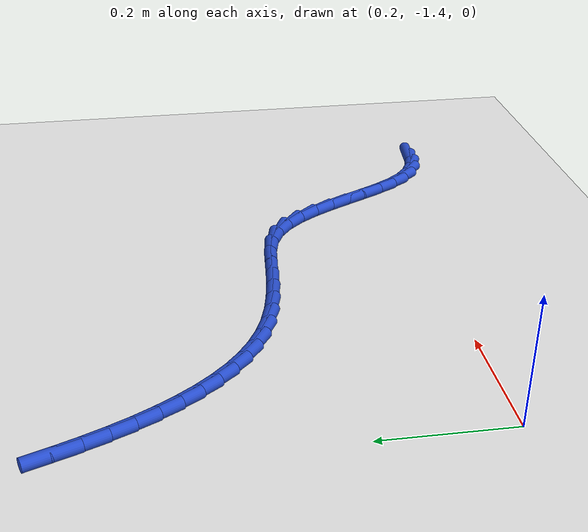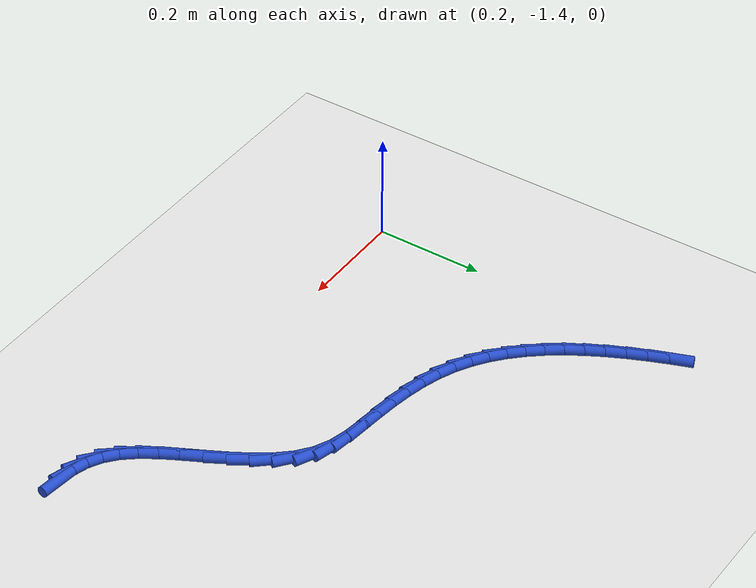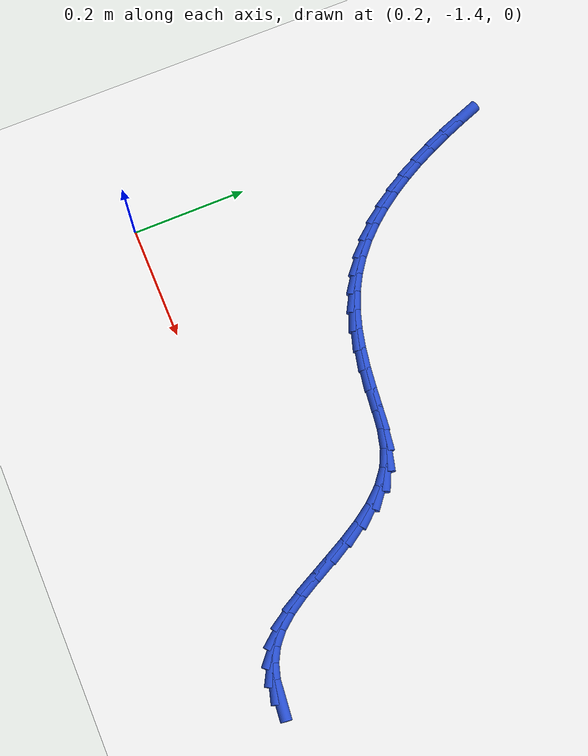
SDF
<sdf version="1.6">
 <world name="default">
  <model name="ground_plane">
   <static>1</static>
   <link name="link">
    <collision name="collision">
     <geometry><plane><normal>0 0 1</normal><size>100 100</size></plane></geometry>
     <surface><friction><ode><mu>100</mu><mu2>50</mu2></ode></friction></surface>
    </collision>
    <visual name="visual">
     <cast_shadows>0</cast_shadows>
     <geometry><plane><normal>0 0 1</normal><size>100 100</size></plane></geometry>
     <material>
      <script><uri>file://media/materials/scripts/gazebo.material</uri><name>Gazebo/WhiteGlow</name></script>
     </material>
    </visual>
   </link>
  </model>
  <model name="line">
   <link name="link_214">
    <pose>1.0305554551037177 -1.4662741876040202 0.01 0 1.57 -0.1008038331178782</pose>
    <collision name="collision">
     <geometry><cylinder><radius>0.01</radius><length>0.08</length></cylinder></geometry>
    </collision>
    <visual name="visual">
     <material>
      <script><name>Gazebo/Blue</name><uri>file://media/materials/scripts/gazebo.material</uri></script>
     </material>
     <geometry><cylinder><radius>0.01</radius><length>0.08</length></cylinder></geometry>
    </visual>
   </link>
   <link name="link_215">
    <pose>1.002368508998246 -1.4634231720626836 0.01 0 1.57 -0.2843484941278745</pose>
    <collision name="collision">
     <geometry><cylinder><radius>0.01</radius><length>0.08</length></cylinder></geometry>
    </collision>
    <visual name="visual">
     <material>
      <script><name>Gazebo/Blue</name><uri>file://media/materials/scripts/gazebo.material</uri></script>
     </material>
     <geometry><cylinder><radius>0.01</radius><length>0.08</length></cylinder></geometry>
    </visual>
   </link>
   <link name="link_216">
    <pose>0.9760531002797908 -1.455732012025685 0.01 0 1.57 -0.49069960765369314</pose>
    <collision name="collision">
     <geometry><cylinder><radius>0.01</radius><length>0.08</length></cylinder></geometry>
    </collision>
    <visual name="visual">
     <material>
      <script><name>Gazebo/Blue</name><uri>file://media/materials/scripts/gazebo.material</uri></script>
     </material>
     <geometry><cylinder><radius>0.01</radius><length>0.08</length></cylinder></geometry>
    </visual>
   </link>
   <link name="link_217">
    <pose>0.9517767680703308 -1.4427614801547657 0.01 0 1.57 -0.702575134789616</pose>
    <collision name="collision">
     <geometry><cylinder><radius>0.01</radius><length>0.08</length></cylinder></geometry>
    </collision>
    <visual name="visual">
     <material>
      <script><name>Gazebo/Blue</name><uri>file://media/materials/scripts/gazebo.material</uri></script>
     </material>
     <geometry><cylinder><radius>0.01</radius><length>0.08</length></cylinder></geometry>
    </visual>
   </link>
   <link name="link_218">
    <pose>0.9297061609691024 -1.424074296624954 0.01 0 1.57 -0.8847422332577769</pose>
    <collision name="collision">
     <geometry><cylinder><radius>0.01</radius><length>0.08</length></cylinder></geometry>
    </collision>
    <visual name="visual">
     <material>
      <script><name>Gazebo/Blue</name><uri>file://media/materials/scripts/gazebo.material</uri></script>
     </material>
     <geometry><cylinder><radius>0.01</radius><length>0.08</length></cylinder></geometry>
    </visual>
   </link>
   <link name="link_219">
    <pose>0.9097786565612326 -1.3997345818860505 0.01 0 1.57 -1.002172899204976</pose>
    <collision name="collision">
     <geometry><cylinder><radius>0.01</radius><length>0.08</length></cylinder></geometry>
    </collision>
    <visual name="visual">
     <material>
      <script><name>Gazebo/Blue</name><uri>file://media/materials/scripts/gazebo.material</uri></script>
     </material>
     <geometry><cylinder><radius>0.01</radius><length>0.08</length></cylinder></geometry>
    </visual>
   </link>
   <link name="link_220">
    <pose>0.8913986255302488 -1.3709721066029663 0.01 0 1.57 -1.0674908517237855</pose>
    <collision name="collision">
     <geometry><cylinder><radius>0.01</radius><length>0.08</length></cylinder></geometry>
    </collision>
    <visual name="visual">
     <material>
      <script><name>Gazebo/Blue</name><uri>file://media/materials/scripts/gazebo.material</uri></script>
     </material>
     <geometry><cylinder><radius>0.01</radius><length>0.08</length></cylinder></geometry>
    </visual>
   </link>
   <link name="link_221">
    <pose>0.8738948694628044 -1.3391819059686398 0.01 0 1.57 -1.0931918635247293</pose>
    <collision name="collision">
     <geometry><cylinder><radius>0.01</radius><length>0.08</length></cylinder></geometry>
    </collision>
    <visual name="visual">
     <material>
      <script><name>Gazebo/Blue</name><uri>file://media/materials/scripts/gazebo.material</uri></script>
     </material>
     <geometry><cylinder><radius>0.01</radius><length>0.08</length></cylinder></geometry>
    </visual>
   </link>
   <link name="link_222">
    <pose>0.8565961899455512 -1.3057590151760088 0.01 0 1.57 -1.085185541561884</pose>
    <collision name="collision">
     <geometry><cylinder><radius>0.01</radius><length>0.08</length></cylinder></geometry>
    </collision>
    <visual name="visual">
     <material>
      <script><name>Gazebo/Blue</name><uri>file://media/materials/scripts/gazebo.material</uri></script>
     </material>
     <geometry><cylinder><radius>0.01</radius><length>0.08</length></cylinder></geometry>
    </visual>
   </link>
   <link name="link_223">
    <pose>0.8388313885651429 -1.272098469418013 0.01 0 1.57 -1.0440556481238854</pose>
    <collision name="collision">
     <geometry><cylinder><radius>0.01</radius><length>0.08</length></cylinder></geometry>
    </collision>
    <visual name="visual">
     <material>
      <script><name>Gazebo/Blue</name><uri>file://media/materials/scripts/gazebo.material</uri></script>
     </material>
     <geometry><cylinder><radius>0.01</radius><length>0.08</length></cylinder></geometry>
    </visual>
   </link>
   <link name="link_224">
    <pose>0.8199292669082314 -1.2395953038875898 0.01 0 1.57 -0.9658047216336322</pose>
    <collision name="collision">
     <geometry><cylinder><radius>0.01</radius><length>0.08</length></cylinder></geometry>
    </collision>
    <visual name="visual">
     <material>
      <script><name>Gazebo/Blue</name><uri>file://media/materials/scripts/gazebo.material</uri></script>
     </material>
     <geometry><cylinder><radius>0.01</radius><length>0.08</length></cylinder></geometry>
    </visual>
   </link>
   <link name="link_225">
    <pose>0.7992186265614698 -1.2096445537776788 0.01 0 1.57 -0.8425169552904112</pose>
    <collision name="collision">
     <geometry><cylinder><radius>0.01</radius><length>0.08</length></cylinder></geometry>
    </collision>
    <visual name="visual">
     <material>
      <script><name>Gazebo/Blue</name><uri>file://media/materials/scripts/gazebo.material</uri></script>
     </material>
     <geometry><cylinder><radius>0.01</radius><length>0.08</length></cylinder></geometry>
    </visual>
   </link>
   <link name="link_226">
    <pose>0.7760282691115109 -1.183641254281218 0.01 0 1.57 -0.6651259967562089</pose>
    <collision name="collision">
     <geometry><cylinder><radius>0.01</radius><length>0.08</length></cylinder></geometry>
    </collision>
    <visual name="visual">
     <material>
      <script><name>Gazebo/Blue</name><uri>file://media/materials/scripts/gazebo.material</uri></script>
     </material>
     <geometry><cylinder><radius>0.01</radius><length>0.08</length></cylinder></geometry>
    </visual>
   </link>
   <link name="link_227">
    <pose>0.7496869961450064 -1.1629804405911452 0.01 0 1.57 -0.43771475261755804</pose>
    <collision name="collision">
     <geometry><cylinder><radius>0.01</radius><length>0.08</length></cylinder></geometry>
    </collision>
    <visual name="visual">
     <material>
      <script><name>Gazebo/Blue</name><uri>file://media/materials/scripts/gazebo.material</uri></script>
     </material>
     <geometry><cylinder><radius>0.01</radius><length>0.08</length></cylinder></geometry>
    </visual>
   </link>
   <link name="link_228">
    <pose>0.7196035461994708 -1.1489016331193054 0.01 0 1.57 -0.24434995654041083</pose>
    <collision name="collision">
     <geometry><cylinder><radius>0.01</radius><length>0.08</length></cylinder></geometry>
    </collision>
    <visual name="visual">
     <material>
      <script><name>Gazebo/Blue</name><uri>file://media/materials/scripts/gazebo.material</uri></script>
     </material>
     <geometry><cylinder><radius>0.01</radius><length>0.08</length></cylinder></geometry>
    </visual>
   </link>
   <link name="link_229">
    <pose>0.6862455033709595 -1.1405844021108296 0.01 0 1.57 -0.1356991752426476</pose>
    <collision name="collision">
     <geometry><cylinder><radius>0.01</radius><length>0.08</length></cylinder></geometry>
    </collision>
    <visual name="visual">
     <material>
      <script><name>Gazebo/Blue</name><uri>file://media/materials/scripts/gazebo.material</uri></script>
     </material>
     <geometry><cylinder><radius>0.01</radius><length>0.08</length></cylinder></geometry>
    </visual>
   </link>
   <link name="link_230">
    <pose>0.650830607988507 -1.1357489128535323 0.01 0 1.57 -0.10077440055350773</pose>
    <collision name="collision">
     <geometry><cylinder><radius>0.01</radius><length>0.08</length></cylinder></geometry>
    </collision>
    <visual name="visual">
     <material>
      <script><name>Gazebo/Blue</name><uri>file://media/materials/scripts/gazebo.material</uri></script>
     </material>
     <geometry><cylinder><radius>0.01</radius><length>0.08</length></cylinder></geometry>
    </visual>
   </link>
   <link name="link_231">
    <pose>0.6145924023564102 -1.1320846167693364 0.01 0 1.57 -0.12177487981638117</pose>
    <collision name="collision">
     <geometry><cylinder><radius>0.01</radius><length>0.08</length></cylinder></geometry>
    </collision>
    <visual name="visual">
     <material>
      <script><name>Gazebo/Blue</name><uri>file://media/materials/scripts/gazebo.material</uri></script>
     </material>
     <geometry><cylinder><radius>0.01</radius><length>0.08</length></cylinder></geometry>
    </visual>
   </link>
   <link name="link_232">
    <pose>0.5785888688954046 -1.1276784895822303 0.01 0 1.57 -0.16395474252750816</pose>
    <collision name="collision">
     <geometry><cylinder><radius>0.01</radius><length>0.08</length></cylinder></geometry>
    </collision>
    <visual name="visual">
     <material>
      <script><name>Gazebo/Blue</name><uri>file://media/materials/scripts/gazebo.material</uri></script>
     </material>
     <geometry><cylinder><radius>0.01</radius><length>0.08</length></cylinder></geometry>
    </visual>
   </link>
   <link name="link_233">
    <pose>0.543335376863444 -1.121846158542068 0.01 0 1.57 -0.22230356233865997</pose>
    <collision name="collision">
     <geometry><cylinder><radius>0.01</radius><length>0.08</length></cylinder></geometry>
    </collision>
    <visual name="visual">
     <material>
      <script><name>Gazebo/Blue</name><uri>file://media/materials/scripts/gazebo.material</uri></script>
     </material>
     <geometry><cylinder><radius>0.01</radius><length>0.08</length></cylinder></geometry>
    </visual>
   </link>
   <link name="link_234">
    <pose>0.5092427881440943 -1.1141398893620122 0.01 0 1.57 -0.29910372173960204</pose>
    <collision name="collision">
     <geometry><cylinder><radius>0.01</radius><length>0.08</length></cylinder></geometry>
    </collision>
    <visual name="visual">
     <material>
      <script><name>Gazebo/Blue</name><uri>file://media/materials/scripts/gazebo.material</uri></script>
     </material>
     <geometry><cylinder><radius>0.01</radius><length>0.08</length></cylinder></geometry>
    </visual>
   </link>
   <link name="link_235">
    <pose>0.4767219646209178 -1.104111947755225 0.01 0 1.57 -0.3964571589255091</pose>
    <collision name="collision">
     <geometry><cylinder><radius>0.01</radius><length>0.08</length></cylinder></geometry>
    </collision>
    <visual name="visual">
     <material>
      <script><name>Gazebo/Blue</name><uri>file://media/materials/scripts/gazebo.material</uri></script>
     </material>
     <geometry><cylinder><radius>0.01</radius><length>0.08</length></cylinder></geometry>
    </visual>
   </link>
   <link name="link_236">
    <pose>0.4461754245900181 -1.0913244540922975 0.01 0 1.57 -0.5047884210897029</pose>
    <collision name="collision">
     <geometry><cylinder><radius>0.01</radius><length>0.08</length></cylinder></geometry>
    </collision>
    <visual name="visual">
     <material>
      <script><name>Gazebo/Blue</name><uri>file://media/materials/scripts/gazebo.material</uri></script>
     </material>
     <geometry><cylinder><radius>0.01</radius><length>0.08</length></cylinder></geometry>
    </visual>
   </link>
   <link name="link_237">
    <pose>0.4177633520365327 -1.0756257511426608 0.01 0 1.57 -0.6097999649317755</pose>
    <collision name="collision">
     <geometry><cylinder><radius>0.01</radius><length>0.08</length></cylinder></geometry>
    </collision>
    <visual name="visual">
     <material>
      <script><name>Gazebo/Blue</name><uri>file://media/materials/scripts/gazebo.material</uri></script>
     </material>
     <geometry><cylinder><radius>0.01</radius><length>0.08</length></cylinder></geometry>
    </visual>
   </link>
   <link name="link_238">
    <pose>0.39137174927872104 -1.0571880191632947 0.01 0 1.57 -0.7083267812465167</pose>
    <collision name="collision">
     <geometry><cylinder><radius>0.01</radius><length>0.08</length></cylinder></geometry>
    </collision>
    <visual name="visual">
     <material>
      <script><name>Gazebo/Blue</name><uri>file://media/materials/scripts/gazebo.material</uri></script>
     </material>
     <geometry><cylinder><radius>0.01</radius><length>0.08</length></cylinder></geometry>
    </visual>
   </link>
   <link name="link_239">
    <pose>0.3668718751201178 -1.0362008520582031 0.01 0 1.57 -0.7986367563173975</pose>
    <collision name="collision">
     <geometry><cylinder><radius>0.01</radius><length>0.08</length></cylinder></geometry>
    </collision>
    <visual name="visual">
     <material>
      <script><name>Gazebo/Blue</name><uri>file://media/materials/scripts/gazebo.material</uri></script>
     </material>
     <geometry><cylinder><radius>0.01</radius><length>0.08</length></cylinder></geometry>
    </visual>
   </link>
   <link name="link_240">
    <pose>0.3441349883642552 -1.012853843731387 0.01 0 1.57 -0.8798104387194794</pose>
    <collision name="collision">
     <geometry><cylinder><radius>0.01</radius><length>0.08</length></cylinder></geometry>
    </collision>
    <visual name="visual">
     <material>
      <script><name>Gazebo/Blue</name><uri>file://media/materials/scripts/gazebo.material</uri></script>
     </material>
     <geometry><cylinder><radius>0.01</radius><length>0.08</length></cylinder></geometry>
    </visual>
   </link>
   <link name="link_241">
    <pose>0.3230323478146681 -0.9873365880868517 0.01 0 1.57 -0.9516126833635283</pose>
    <collision name="collision">
     <geometry><cylinder><radius>0.01</radius><length>0.08</length></cylinder></geometry>
    </collision>
    <visual name="visual">
     <material>
      <script><name>Gazebo/Blue</name><uri>file://media/materials/scripts/gazebo.material</uri></script>
     </material>
     <geometry><cylinder><radius>0.01</radius><length>0.08</length></cylinder></geometry>
    </visual>
   </link>
   <link name="link_242">
    <pose>0.3034352122748883 -0.9598386790285974 0.01 0 1.57 -1.014292400259159</pose>
    <collision name="collision">
     <geometry><cylinder><radius>0.01</radius><length>0.08</length></cylinder></geometry>
    </collision>
    <visual name="visual">
     <material>
      <script><name>Gazebo/Blue</name><uri>file://media/materials/scripts/gazebo.material</uri></script>
     </material>
     <geometry><cylinder><radius>0.01</radius><length>0.08</length></cylinder></geometry>
    </visual>
   </link>
   <link name="link_243">
    <pose>0.28521484054845075 -0.9305497104606292 0.01 0 1.57 -1.0683854238122772</pose>
    <collision name="collision">
     <geometry><cylinder><radius>0.01</radius><length>0.08</length></cylinder></geometry>
    </collision>
    <visual name="visual">
     <material>
      <script><name>Gazebo/Blue</name><uri>file://media/materials/scripts/gazebo.material</uri></script>
     </material>
     <geometry><cylinder><radius>0.01</radius><length>0.08</length></cylinder></geometry>
    </visual>
   </link>
   <link name="link_244">
    <pose>0.2682424914388877 -0.8996592762869476 0.01 0 1.57 -1.114558322331856</pose>
    <collision name="collision">
     <geometry><cylinder><radius>0.01</radius><length>0.08</length></cylinder></geometry>
    </collision>
    <visual name="visual">
     <material>
      <script><name>Gazebo/Blue</name><uri>file://media/materials/scripts/gazebo.material</uri></script>
     </material>
     <geometry><cylinder><radius>0.01</radius><length>0.08</length></cylinder></geometry>
    </visual>
   </link>
   <link name="link_245">
    <pose>0.25238942374973344 -0.8673569704115579 0.01 0 1.57 -1.1535011611620782</pose>
    <collision name="collision">
     <geometry><cylinder><radius>0.01</radius><length>0.08</length></cylinder></geometry>
    </collision>
    <visual name="visual">
     <material>
      <script><name>Gazebo/Blue</name><uri>file://media/materials/scripts/gazebo.material</uri></script>
     </material>
     <geometry><cylinder><radius>0.01</radius><length>0.08</length></cylinder></geometry>
    </visual>
   </link>
   <link name="link_246">
    <pose>0.23752689628452123 -0.8338323867384614 0.01 0 1.57 -1.1858618854905163</pose>
    <collision name="collision">
     <geometry><cylinder><radius>0.01</radius><length>0.08</length></cylinder></geometry>
    </collision>
    <visual name="visual">
     <material>
      <script><name>Gazebo/Blue</name><uri>file://media/materials/scripts/gazebo.material</uri></script>
     </material>
     <geometry><cylinder><radius>0.01</radius><length>0.08</length></cylinder></geometry>
    </visual>
   </link>
   <link name="link_247">
    <pose>0.22352616784678384 -0.7992751191716603 0.01 0 1.57 -1.212210507080065</pose>
    <collision name="collision">
     <geometry><cylinder><radius>0.01</radius><length>0.08</length></cylinder></geometry>
    </collision>
    <visual name="visual">
     <material>
      <script><name>Gazebo/Blue</name><uri>file://media/materials/scripts/gazebo.material</uri></script>
     </material>
     <geometry><cylinder><radius>0.01</radius><length>0.08</length></cylinder></geometry>
    </visual>
   </link>
  </model>
 </world>
</sdf>
